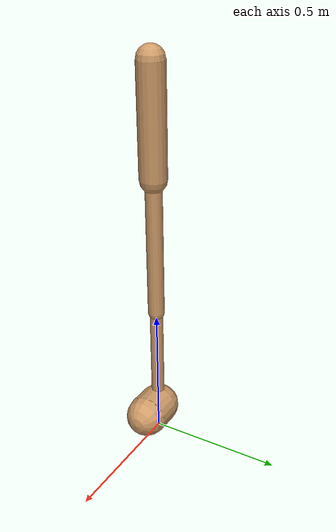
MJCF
<mujoco model="walker2d">
  <compiler angle="degree" coordinate="global" inertiafromgeom="true" />
  <default>
    <joint armature="0.01" damping=".1" limited="true" />
    <geom conaffinity="0" condim="3" contype="1" density="1000" friction="0.8 .1 .1" rgba="0.8 0.6 .4 1" />
  </default>
  <option integrator="RK4" timestep="0.002" />
  <worldbody>

    <body name="torso" pos="0 0 0.15465902545943577">
      <joint armature="0" axis="1 0 0" damping="0" limited="false" name="ignorex" pos="0 0 0" stiffness="0" type="slide" />
      <joint armature="0" axis="0 0 1" damping="0" limited="false" name="ignorez" pos="0 0 0" ref="1.25" stiffness="0" type="slide" />
      <joint armature="0" axis="0 1 0" damping="0" limited="false" name="ignorey" pos="0 0 0" stiffness="0" type="hinge" />
      <geom fromto="0 0 1.45 0 0 1.05" name="torso_geom" size="0.04972212339907048" type="capsule" />
      <body name="thigh">
        <joint axis="0 -1 0" name="thigh_joint" pos="0 0 1.05" range="-150 0" type="hinge" />
        <geom fromto="0.0 0.0 1.05 0.0 0.0 0.5267404616244777" name="thigh_geom" size="0.03070536036424026" type="capsule" />
        <body name="leg" pos="0.0 0.0 -0.07325953837552224">
          <joint axis="0 -1 0" name="leg_joint" pos="0 0 0.6" range="-150 0" type="hinge" />
          <geom fromto="0.0 0.0 0.6 0.0 0.0 0.018600512916086442" name="leg_geom" size="0.024564288291392206" type="capsule" />
          <body name="foot" pos="0.0 0.0 -0.08139948708391356">
            <joint axis="0 -1 0" name="foot_joint" pos="0 0 0.1" range="-45 45" type="hinge" />
            <geom fromto="0.0 0.0 0.1 0.08379731535933871 0.0 0.1" name="foot_geom" size="0.07939008178669421" type="capsule" />
          </body>
        </body>
      </body>

      <body name="thigh_left">
        <joint axis="0 -1 0" name="thigh_left_joint" pos="0 0 1.05" range="-150 0" type="hinge" />
        <geom fromto="0.0 0.0 1.05 0.0 0.0 0.5267404616244777" name="thigh_left_geom" rgba=".7 .3 .6 1" size="0.03070536036424026" type="capsule" />
        <body name="leg_left" pos="0.0 0.0 -0.07325953837552224">
          <joint axis="0 -1 0" name="leg_left_joint" pos="0 0 0.6" range="-150 0" type="hinge" />
          <geom fromto="0.0 0.0 0.6 0.0 0.0 0.018600512916086442" name="leg_left_geom" rgba=".7 .3 .6 1" size="0.024564288291392206" type="capsule" />
          <body name="foot_left" pos="0.0 0.0 -0.08139948708391356">
            <joint axis="0 -1 0" name="foot_left_joint" pos="0 0 0.1" range="-45 45" type="hinge" />
            <geom fromto="0.0 0.0 0.1 0.08379731535933871 0.0 0.1" name="foot_left_geom" rgba=".7 .3 .6 1" size="0.07939008178669421" type="capsule" />
          </body>
        </body>
      </body>
    </body>
  </worldbody>
  <actuator>

    <motor ctrllimited="true" ctrlrange="-1.0 1.0" gear="100" joint="thigh_joint" />
    <motor ctrllimited="true" ctrlrange="-1.0 1.0" gear="100" joint="leg_joint" />
    <motor ctrllimited="true" ctrlrange="-1.0 1.0" gear="100" joint="foot_joint" />
    <motor ctrllimited="true" ctrlrange="-1.0 1.0" gear="100" joint="thigh_left_joint" />
    <motor ctrllimited="true" ctrlrange="-1.0 1.0" gear="100" joint="leg_left_joint" />
    <motor ctrllimited="true" ctrlrange="-1.0 1.0" gear="100" joint="foot_left_joint" />

  </actuator>
</mujoco>
